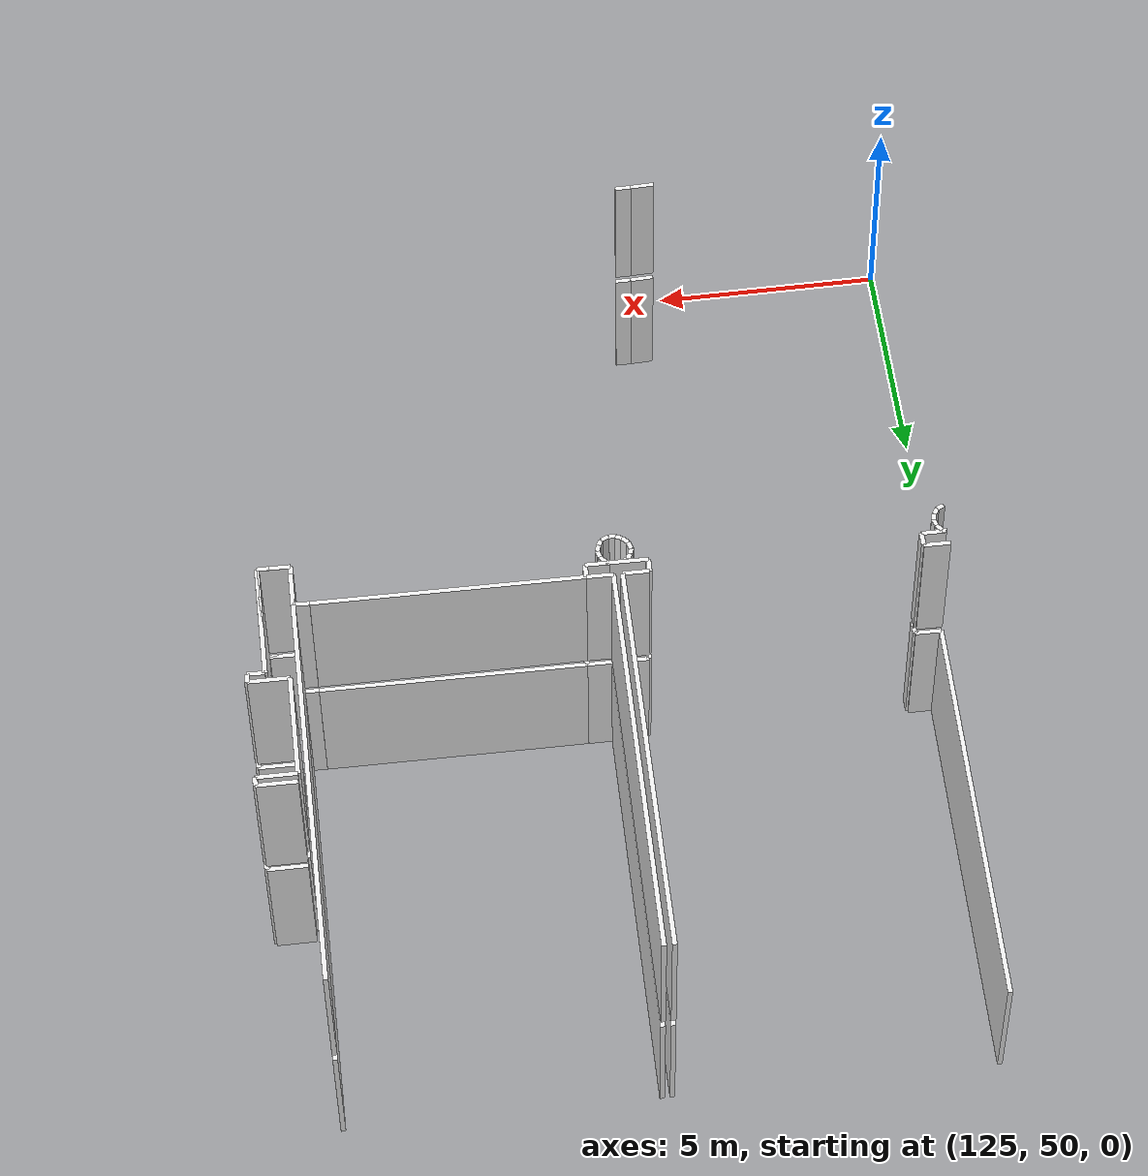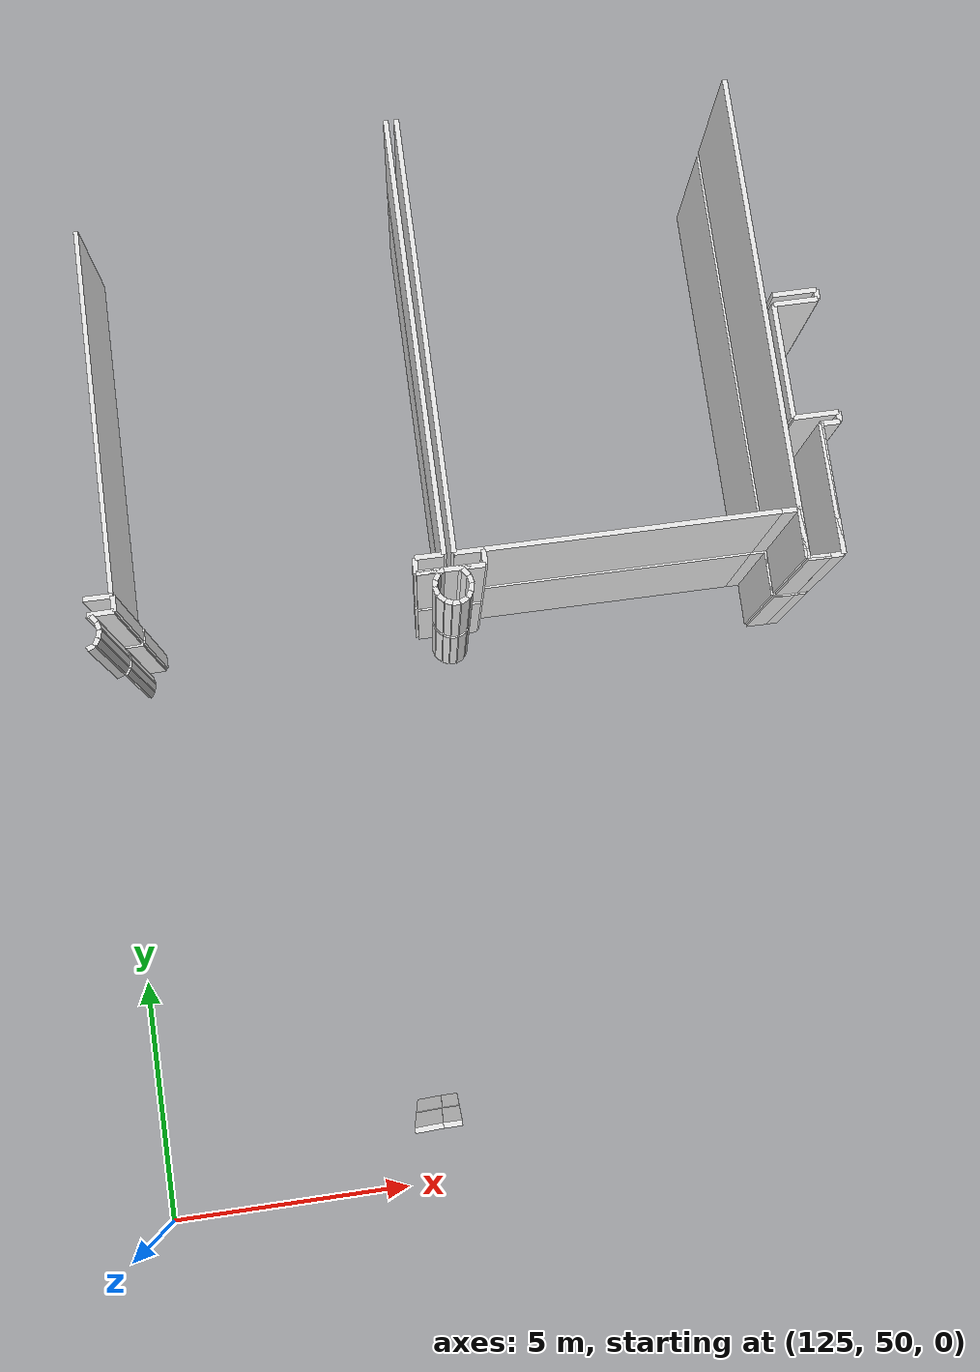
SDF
<sdf version="1.6">
 <world name="default">
  <model name="wall_139.9_66.0_0.0_link">
   <static>true</static>
   <pose>139.88000000000466 65.99500000011176 1.5 0 0 3.129965270893089</pose>
   <link name="link">
    <visual name="visual">
     <geometry><box><size>0.860058137553213 0.1 3</size></box></geometry>
     <material>
      <script><uri>file://media/materials/scripts/gazebo.material</uri><name>Gazebo/White</name></script>
     </material>
    </visual>
   </link>
  </model>
  <model name="wall_139.4_64.9_0.0_link">
   <static>true</static>
   <pose>139.43499999999767 64.85000000009313 1.5 0 0 -1.583839065438706</pose>
   <link name="link">
    <visual name="visual">
     <geometry><box><size>2.3001956436670468 0.1 3</size></box></geometry>
     <material>
      <script><uri>file://media/materials/scripts/gazebo.material</uri><name>Gazebo/White</name></script>
     </material>
    </visual>
   </link>
  </model>
  <model name="wall_139.9_63.7_0.0_link">
   <static>true</static>
   <pose>139.85499999998137 63.69500000006519 1.5 0 0 -0.011493746993381555</pose>
   <link name="link">
    <visual name="visual">
     <geometry><box><size>0.870057469364375 0.1 3</size></box></geometry>
     <material>
      <script><uri>file://media/materials/scripts/gazebo.material</uri><name>Gazebo/White</name></script>
     </material>
    </visual>
   </link>
  </model>
  <model name="wall_139.9_66.2_0.0_link">
   <static>true</static>
   <pose>139.8850000000093 66.18500000005588 1.5 0 0 -0.011764162887155684</pose>
   <link name="link">
    <visual name="visual">
     <geometry><box><size>0.8500588214682255 0.1 3</size></box></geometry>
     <material>
      <script><uri>file://media/materials/scripts/gazebo.material</uri><name>Gazebo/White</name></script>
     </material>
    </visual>
   </link>
  </model>
  <model name="wall_140.3_66.1_0.0_link">
   <static>true</static>
   <pose>140.30999999999767 66.08500000019558 1.5 0 0 -1.5707963267948966</pose>
   <link name="link">
    <visual name="visual">
     <geometry><box><size>0.18999999994412065 0.1 3</size></box></geometry>
     <material>
      <script><uri>file://media/materials/scripts/gazebo.material</uri><name>Gazebo/White</name></script>
     </material>
    </visual>
   </link>
  </model>
  <model name="wall_132.5_66.4_0.0_link">
   <static>true</static>
   <pose>132.4899999999907 66.42999999993481 1.5 0 0 1.557253136818869</pose>
   <link name="link">
    <visual name="visual">
     <geometry><box><size>8.860812603688696 0.1 3</size></box></geometry>
     <material>
      <script><uri>file://media/materials/scripts/gazebo.material</uri><name>Gazebo/White</name></script>
     </material>
    </visual>
   </link>
  </model>
  <model name="wall_125.7_66.5_0.0_link">
   <static>true</static>
   <pose>125.67499999998836 66.53500000014901 1.5 0 0 -1.5854514218446472</pose>
   <link name="link">
    <visual name="visual">
     <geometry><box><size>8.87095259833936 0.1 3</size></box></geometry>
     <material>
      <script><uri>file://media/materials/scripts/gazebo.material</uri><name>Gazebo/White</name></script>
     </material>
    </visual>
   </link>
  </model>
  <model name="wall_125.9_62.1_0.0_link">
   <static>true</static>
   <pose>125.88999999998487 62.09499999997206 1.5 0 0 -0.017855245571888664</pose>
   <link name="link">
    <visual name="visual">
     <geometry><box><size>0.5600892785996132 0.1 3</size></box></geometry>
     <material>
      <script><uri>file://media/materials/scripts/gazebo.material</uri><name>Gazebo/White</name></script>
     </material>
    </visual>
   </link>
  </model>
  <model name="wall_132.1_62.0_0.0_link">
   <static>true</static>
   <pose>132.14999999999418 62.00499999988824 1.5 0 0 -0.017855244740615724</pose>
   <link name="link">
    <visual name="visual">
     <geometry><box><size>0.5600892785912992 0.1 3</size></box></geometry>
     <material>
      <script><uri>file://media/materials/scripts/gazebo.material</uri><name>Gazebo/White</name></script>
     </material>
    </visual>
   </link>
  </model>
  <model name="wall_139.0_61.9_0.0_link">
   <static>true</static>
   <pose>139.04000000000815 61.91500000003725 1.5 0 0 3.112189366044838</pose>
   <link name="link">
    <visual name="visual">
     <geometry><box><size>0.34014702705292804 0.1 3</size></box></geometry>
     <material>
      <script><uri>file://media/materials/scripts/gazebo.material</uri><name>Gazebo/White</name></script>
     </material>
    </visual>
   </link>
  </model>
  <model name="wall_136.0_62.0_0.0_link">
   <static>true</static>
   <pose>136.02499999999418 61.955000000074506 1.5 0 0 3.1292909894057774</pose>
   <link name="link">
    <visual name="visual">
     <geometry><box><size>5.690430563680416 0.1 3</size></box></geometry>
     <material>
      <script><uri>file://media/materials/scripts/gazebo.material</uri><name>Gazebo/White</name></script>
     </material>
    </visual>
   </link>
  </model>
  <model name="wall_132.9_62.0_0.0_link">
   <static>true</static>
   <pose>132.89999999999418 61.99500000011176 1.5 0 0 3.1237374088491774</pose>
   <link name="link">
    <visual name="visual">
     <geometry><box><size>0.5600892785912992 0.1 3</size></box></geometry>
     <material>
      <script><uri>file://media/materials/scripts/gazebo.material</uri><name>Gazebo/White</name></script>
     </material>
    </visual>
   </link>
  </model>
  <model name="wall_132.7_66.4_0.0_link">
   <static>true</static>
   <pose>132.69000000000233 66.42999999993481 1.5 0 0 1.5549962873031096</pose>
   <link name="link">
    <visual name="visual">
     <geometry><box><size>8.861106025643384 0.1 3</size></box></geometry>
     <material>
      <script><uri>file://media/materials/scripts/gazebo.material</uri><name>Gazebo/White</name></script>
     </material>
    </visual>
   </link>
  </model>
  <model name="wall_139.3_66.3_0.0_link">
   <static>true</static>
   <pose>139.26500000001397 66.34000000008382 1.5 0 0 -1.583211038835171</pose>
   <link name="link">
    <visual name="visual">
     <geometry><box><size>8.860682817801711 0.1 3</size></box></geometry>
     <material>
      <script><uri>file://media/materials/scripts/gazebo.material</uri><name>Gazebo/White</name></script>
     </material>
    </visual>
   </link>
  </model>
  <model name="wall_131.1_51.7_0.0_link">
   <static>true</static>
   <pose>131.10000000000582 51.70999999996275 1.5 0 0 3.141592653589793</pose>
   <link name="link">
    <visual name="visual">
     <geometry><box><size>0.34000000002561137 0.1 3</size></box></geometry>
     <material>
      <script><uri>file://media/materials/scripts/gazebo.material</uri><name>Gazebo/White</name></script>
     </material>
    </visual>
   </link>
  </model>
  <model name="wall_130.7_51.7_0.0_link">
   <static>true</static>
   <pose>130.67499999998836 51.699999999953434 1.5 0 0 -3.102397051626987</pose>
   <link name="link">
    <visual name="visual">
     <geometry><box><size>0.5103920062170298 0.1 3</size></box></geometry>
     <material>
      <script><uri>file://media/materials/scripts/gazebo.material</uri><name>Gazebo/White</name></script>
     </material>
    </visual>
   </link>
  </model>
  <model name="wall_125.8_61.3_0.0_link">
   <static>true</static>
   <pose>125.77999999999884 61.265000000130385 1.5 0 0 1.019141343791695</pose>
   <link name="link">
    <visual name="visual">
     <geometry><box><size>0.15264337513809906 0.1 3</size></box></geometry>
     <material>
      <script><uri>file://media/materials/scripts/gazebo.material</uri><name>Gazebo/White</name></script>
     </material>
    </visual>
   </link>
  </model>
  <model name="wall_125.8_61.4_0.0_link">
   <static>true</static>
   <pose>125.83999999999651 61.40500000002794 1.5 0 0 1.310193935023403</pose>
   <link name="link">
    <visual name="visual">
     <geometry><box><size>0.15524174686721334 0.1 3</size></box></geometry>
     <material>
      <script><uri>file://media/materials/scripts/gazebo.material</uri><name>Gazebo/White</name></script>
     </material>
    </visual>
   </link>
  </model>
  <model name="wall_125.8_61.6_0.0_link">
   <static>true</static>
   <pose>125.83999999999651 61.55499999993481 1.5 0 0 1.8313987185663902</pose>
   <link name="link">
    <visual name="visual">
     <geometry><box><size>0.15524174686721334 0.1 3</size></box></geometry>
     <material>
      <script><uri>file://media/materials/scripts/gazebo.material</uri><name>Gazebo/White</name></script>
     </material>
    </visual>
   </link>
  </model>
  <model name="wall_125.8_61.7_0.0_link">
   <static>true</static>
   <pose>125.77499999999418 61.69499999983236 1.5 0 0 2.176340990935377</pose>
   <link name="link">
    <visual name="visual">
     <geometry><box><size>0.15811388293111006 0.1 3</size></box></geometry>
     <material>
      <script><uri>file://media/materials/scripts/gazebo.material</uri><name>Gazebo/White</name></script>
     </material>
    </visual>
   </link>
  </model>
  <model name="wall_125.7_61.8_0.0_link">
   <static>true</static>
   <pose>125.69000000000233 61.77499999990687 1.5 0 0 2.782821980289233</pose>
   <link name="link">
    <visual name="visual">
     <geometry><box><size>0.08544003750549678 0.1 3</size></box></geometry>
     <material>
      <script><uri>file://media/materials/scripts/gazebo.material</uri><name>Gazebo/White</name></script>
     </material>
    </visual>
   </link>
  </model>
  <model name="wall_125.9_61.8_0.0_link">
   <static>true</static>
   <pose>125.91000000000349 61.79000000003725 1.5 0 0 0.0</pose>
   <link name="link">
    <visual name="visual">
     <geometry><box><size>0.5199999999604188 0.1 3</size></box></geometry>
     <material>
      <script><uri>file://media/materials/scripts/gazebo.material</uri><name>Gazebo/White</name></script>
     </material>
    </visual>
   </link>
  </model>
  <model name="wall_126.2_61.9_0.0_link">
   <static>true</static>
   <pose>126.1699999999837 61.93999999994412 1.5 0 0 1.5707963267948966</pose>
   <link name="link">
    <visual name="visual">
     <geometry><box><size>0.2999999998137355 0.1 3</size></box></geometry>
     <material>
      <script><uri>file://media/materials/scripts/gazebo.material</uri><name>Gazebo/White</name></script>
     </material>
    </visual>
   </link>
  </model>
  <model name="wall_131.9_61.9_0.0_link">
   <static>true</static>
   <pose>131.8649999999907 61.859999999869615 1.5 0 0 -1.6041173227248264</pose>
   <link name="link">
    <visual name="visual">
     <geometry><box><size>0.30016662021022184 0.1 3</size></box></geometry>
     <material>
      <script><uri>file://media/materials/scripts/gazebo.material</uri><name>Gazebo/White</name></script>
     </material>
    </visual>
   </link>
  </model>
  <model name="wall_132.1_61.7_0.0_link">
   <static>true</static>
   <pose>132.11999999999534 61.705000000074506 1.5 0 0 -0.01922839866933633</pose>
   <link name="link">
    <visual name="visual">
     <geometry><box><size>0.5200961449721592 0.1 3</size></box></geometry>
     <material>
      <script><uri>file://media/materials/scripts/gazebo.material</uri><name>Gazebo/White</name></script>
     </material>
    </visual>
   </link>
  </model>
  <model name="wall_132.3_61.7_0.0_link">
   <static>true</static>
   <pose>132.3300000000163 61.670000000158325 1.5 0 0 -2.601173152805612</pose>
   <link name="link">
    <visual name="visual">
     <geometry><box><size>0.11661903790569063 0.1 3</size></box></geometry>
     <material>
      <script><uri>file://media/materials/scripts/gazebo.material</uri><name>Gazebo/White</name></script>
     </material>
    </visual>
   </link>
  </model>
  <model name="wall_132.2_61.6_0.0_link">
   <static>true</static>
   <pose>132.2400000000198 61.58499999996275 1.5 0 0 -2.199592611857395</pose>
   <link name="link">
    <visual name="visual">
     <geometry><box><size>0.13601470536809043 0.1 3</size></box></geometry>
     <material>
      <script><uri>file://media/materials/scripts/gazebo.material</uri><name>Gazebo/White</name></script>
     </material>
    </visual>
   </link>
  </model>
  <model name="wall_132.2_61.5_0.0_link">
   <static>true</static>
   <pose>132.18499999999767 61.46499999985099 1.5 0 0 -1.7975951752411936</pose>
   <link name="link">
    <visual name="visual">
     <geometry><box><size>0.13341664053864913 0.1 3</size></box></geometry>
     <material>
      <script><uri>file://media/materials/scripts/gazebo.material</uri><name>Gazebo/White</name></script>
     </material>
    </visual>
   </link>
  </model>
  <model name="wall_132.2_61.3_0.0_link">
   <static>true</static>
   <pose>132.19000000000233 61.32000000006519 1.5 0 0 -1.3258176629832366</pose>
   <link name="link">
    <visual name="visual">
     <geometry><box><size>0.16492422472654628 0.1 3</size></box></geometry>
     <material>
      <script><uri>file://media/materials/scripts/gazebo.material</uri><name>Gazebo/White</name></script>
     </material>
    </visual>
   </link>
  </model>
  <model name="wall_132.3_61.2_0.0_link">
   <static>true</static>
   <pose>132.27000000001863 61.175000000046566 1.5 0 0 -0.8253768518968939</pose>
   <link name="link">
    <visual name="visual">
     <geometry><box><size>0.17691806038643168 0.1 3</size></box></geometry>
     <material>
      <script><uri>file://media/materials/scripts/gazebo.material</uri><name>Gazebo/White</name></script>
     </material>
    </visual>
   </link>
  </model>
  <model name="wall_132.4_61.1_0.0_link">
   <static>true</static>
   <pose>132.39500000001863 61.079999999841675 1.5 0 0 -0.4324077759112656</pose>
   <link name="link">
    <visual name="visual">
     <geometry><box><size>0.14317821066040826 0.1 3</size></box></geometry>
     <material>
      <script><uri>file://media/materials/scripts/gazebo.material</uri><name>Gazebo/White</name></script>
     </material>
    </visual>
   </link>
  </model>
  <model name="wall_132.5_61.0_0.0_link">
   <static>true</static>
   <pose>132.52999999999884 61.044999999925494 1.5 0 0 -0.07130746321929742</pose>
   <link name="link">
    <visual name="visual">
     <geometry><box><size>0.14035668841613164 0.1 3</size></box></geometry>
     <material>
      <script><uri>file://media/materials/scripts/gazebo.material</uri><name>Gazebo/White</name></script>
     </material>
    </visual>
   </link>
  </model>
  <model name="wall_132.7_61.1_0.0_link">
   <static>true</static>
   <pose>132.67999999999302 61.074999999953434 1.5 0 0 0.41241044064316335</pose>
   <link name="link">
    <visual name="visual">
     <geometry><box><size>0.17464249192840064 0.1 3</size></box></geometry>
     <material>
      <script><uri>file://media/materials/scripts/gazebo.material</uri><name>Gazebo/White</name></script>
     </material>
    </visual>
   </link>
  </model>
  <model name="wall_132.8_61.2_0.0_link">
   <static>true</static>
   <pose>132.7950000000128 61.169999999925494 1.5 0 0 1.04272187873045</pose>
   <link name="link">
    <visual name="visual">
     <geometry><box><size>0.13892443999455237 0.1 3</size></box></geometry>
     <material>
      <script><uri>file://media/materials/scripts/gazebo.material</uri><name>Gazebo/White</name></script>
     </material>
    </visual>
   </link>
  </model>
  <model name="wall_132.9_61.3_0.0_link">
   <static>true</static>
   <pose>132.85000000000582 61.30499999993481 1.5 0 0 1.310193935023403</pose>
   <link name="link">
    <visual name="visual">
     <geometry><box><size>0.15524174686721334 0.1 3</size></box></geometry>
     <material>
      <script><uri>file://media/materials/scripts/gazebo.material</uri><name>Gazebo/White</name></script>
     </material>
    </visual>
   </link>
  </model>
  <model name="wall_132.9_61.5_0.0_link">
   <static>true</static>
   <pose>132.85500000001048 61.454999999841675 1.5 0 0 1.7681918865701522</pose>
   <link name="link">
    <visual name="visual">
     <geometry><box><size>0.15297058531052382 0.1 3</size></box></geometry>
     <material>
      <script><uri>file://media/materials/scripts/gazebo.material</uri><name>Gazebo/White</name></script>
     </material>
    </visual>
   </link>
  </model>
  <model name="wall_132.8_61.6_0.0_link">
   <static>true</static>
   <pose>132.79000000000815 61.59499999997206 1.5 0 0 2.2264919518895905</pose>
   <link name="link">
    <visual name="visual">
     <geometry><box><size>0.16401219497037284 0.1 3</size></box></geometry>
     <material>
      <script><uri>file://media/materials/scripts/gazebo.material</uri><name>Gazebo/White</name></script>
     </material>
    </visual>
   </link>
  </model>
  <model name="wall_132.7_61.7_0.0_link">
   <static>true</static>
   <pose>132.69999999998254 61.68000000016764 1.5 0 0 2.6779450442979487</pose>
   <link name="link">
    <visual name="visual">
     <geometry><box><size>0.0894427191312291 0.1 3</size></box></geometry>
     <material>
      <script><uri>file://media/materials/scripts/gazebo.material</uri><name>Gazebo/White</name></script>
     </material>
    </visual>
   </link>
  </model>
  <model name="wall_132.9_61.7_0.0_link">
   <static>true</static>
   <pose>132.91499999997905 61.69500000006519 1.5 0 0 -0.019605331331456193</pose>
   <link name="link">
    <visual name="visual">
     <geometry><box><size>0.5100980298083324 0.1 3</size></box></geometry>
     <material>
      <script><uri>file://media/materials/scripts/gazebo.material</uri><name>Gazebo/White</name></script>
     </material>
    </visual>
   </link>
  </model>
  <model name="wall_133.2_61.8_0.0_link">
   <static>true</static>
   <pose>133.17499999998836 61.84000000008382 1.5 0 0 1.5374753309166493</pose>
   <link name="link">
    <visual name="visual">
     <geometry><box><size>0.30016662067562466 0.1 3</size></box></geometry>
     <material>
      <script><uri>file://media/materials/scripts/gazebo.material</uri><name>Gazebo/White</name></script>
     </material>
    </visual>
   </link>
  </model>
  <model name="wall_139.2_61.5_0.0_link">
   <static>true</static>
   <pose>139.2050000000163 61.5250000001397 1.5 0 0 -1.5837826097268481</pose>
   <link name="link">
    <visual name="visual">
     <geometry><box><size>0.770064932345884 0.1 3</size></box></geometry>
     <material>
      <script><uri>file://media/materials/scripts/gazebo.material</uri><name>Gazebo/White</name></script>
     </material>
    </visual>
   </link>
  </model>
  <model name="wall_139.2_61.0_0.0_link">
   <static>true</static>
   <pose>139.19500000000698 61.045000000158325 1.5 0 0 -1.6233793884701562</pose>
   <link name="link">
    <visual name="visual">
     <geometry><box><size>0.19026297584909185 0.1 3</size></box></geometry>
     <material>
      <script><uri>file://media/materials/scripts/gazebo.material</uri><name>Gazebo/White</name></script>
     </material>
    </visual>
   </link>
  </model>
  <model name="wall_139.4_60.9_0.0_link">
   <static>true</static>
   <pose>139.4100000000035 60.94500000006519 1.5 0 0 -0.022723361391563727</pose>
   <link name="link">
    <visual name="visual">
     <geometry><box><size>0.44011362170113727 0.1 3</size></box></geometry>
     <material>
      <script><uri>file://media/materials/scripts/gazebo.material</uri><name>Gazebo/White</name></script>
     </material>
    </visual>
   </link>
  </model>
  <model name="wall_139.8_60.9_0.0_link">
   <static>true</static>
   <pose>139.75500000000466 60.93999999994412 1.5 0 0 0.0</pose>
   <link name="link">
    <visual name="visual">
     <geometry><box><size>0.25 0.1 3</size></box></geometry>
     <material>
      <script><uri>file://media/materials/scripts/gazebo.material</uri><name>Gazebo/White</name></script>
     </material>
    </visual>
   </link>
  </model>
  <model name="wall_139.9_61.3_0.0_link">
   <static>true</static>
   <pose>139.8850000000093 61.28499999991618 1.5 0 0 1.5563045877147286</pose>
   <link name="link">
    <visual name="visual">
     <geometry><box><size>0.6900724599077062 0.1 3</size></box></geometry>
     <material>
      <script><uri>file://media/materials/scripts/gazebo.material</uri><name>Gazebo/White</name></script>
     </material>
    </visual>
   </link>
  </model>
  <model name="wall_139.9_62.6_0.0_link">
   <static>true</static>
   <pose>139.89999999999418 62.56999999983236 1.5 0 0 1.5601584302397742</pose>
   <link name="link">
    <visual name="visual">
     <geometry><box><size>1.88010637985679 0.1 3</size></box></geometry>
     <material>
      <script><uri>file://media/materials/scripts/gazebo.material</uri><name>Gazebo/White</name></script>
     </material>
    </visual>
   </link>
  </model>
  <model name="wall_140.1_63.5_0.0_link">
   <static>true</static>
   <pose>140.09500000000116 63.50499999988824 1.5 0 0 -0.027020448579695773</pose>
   <link name="link">
    <visual name="visual">
     <geometry><box><size>0.3701351105139276 0.1 3</size></box></geometry>
     <material>
      <script><uri>file://media/materials/scripts/gazebo.material</uri><name>Gazebo/White</name></script>
     </material>
    </visual>
   </link>
  </model>
  <model name="wall_140.3_63.6_0.0_link">
   <static>true</static>
   <pose>140.2850000000035 63.59499999997206 1.5 0 0 1.5182132654251468</pose>
   <link name="link">
    <visual name="visual">
     <geometry><box><size>0.19026297584603252 0.1 3</size></box></geometry>
     <material>
      <script><uri>file://media/materials/scripts/gazebo.material</uri><name>Gazebo/White</name></script>
     </material>
    </visual>
   </link>
  </model>
  <model name="wall_132.5_61.7_0.0_link">
   <static>true</static>
   <pose>132.51499999998487 61.699999999953434 1.5 0 0 -0.015265989561022346</pose>
   <link name="link">
    <visual name="visual">
     <geometry><box><size>1.3101526628582811 0.1 3</size></box></geometry>
     <material>
      <script><uri>file://media/materials/scripts/gazebo.material</uri><name>Gazebo/White</name></script>
     </material>
    </visual>
   </link>
  </model>
  <model name="wall_139.2_61.4_0.0_link">
   <static>true</static>
   <pose>139.20000000001164 61.43000000016764 1.5 0 0 -1.5916266468513158</pose>
   <link name="link">
    <visual name="visual">
     <geometry><box><size>0.9602083106957674 0.1 3</size></box></geometry>
     <material>
      <script><uri>file://media/materials/scripts/gazebo.material</uri><name>Gazebo/White</name></script>
     </material>
    </visual>
   </link>
  </model>
  <model name="wall_139.5_60.9_0.0_link">
   <static>true</static>
   <pose>139.5350000000035 60.94500000006519 1.5 0 0 -0.014491739416310578</pose>
   <link name="link">
    <visual name="visual">
     <geometry><box><size>0.6900724599692818 0.1 3</size></box></geometry>
     <material>
      <script><uri>file://media/materials/scripts/gazebo.material</uri><name>Gazebo/White</name></script>
     </material>
    </visual>
   </link>
  </model>
  <model name="wall_139.9_62.2_0.0_link">
   <static>true</static>
   <pose>139.89499999998952 62.2249999998603 1.5 0 0 1.559123705215765</pose>
   <link name="link">
    <visual name="visual">
     <geometry><box><size>2.570175091143894 0.1 3</size></box></geometry>
     <material>
      <script><uri>file://media/materials/scripts/gazebo.material</uri><name>Gazebo/White</name></script>
     </material>
    </visual>
   </link>
  </model>
  <model name="wall_139.9_66.0_3.2_link">
   <static>true</static>
   <pose>139.88000000000466 65.99500000011176 4.7 0 0 3.129965270893089</pose>
   <link name="link">
    <visual name="visual">
     <geometry><box><size>0.860058137553213 0.1 3</size></box></geometry>
     <material>
      <script><uri>file://media/materials/scripts/gazebo.material</uri><name>Gazebo/White</name></script>
     </material>
    </visual>
   </link>
  </model>
  <model name="wall_139.4_64.9_3.2_link">
   <static>true</static>
   <pose>139.43499999999767 64.85000000009313 4.7 0 0 -1.583839065438706</pose>
   <link name="link">
    <visual name="visual">
     <geometry><box><size>2.3001956436670468 0.1 3</size></box></geometry>
     <material>
      <script><uri>file://media/materials/scripts/gazebo.material</uri><name>Gazebo/White</name></script>
     </material>
    </visual>
   </link>
  </model>
  <model name="wall_139.9_63.7_3.2_link">
   <static>true</static>
   <pose>139.85499999998137 63.69500000006519 4.7 0 0 -0.011493746993381555</pose>
   <link name="link">
    <visual name="visual">
     <geometry><box><size>0.870057469364375 0.1 3</size></box></geometry>
     <material>
      <script><uri>file://media/materials/scripts/gazebo.material</uri><name>Gazebo/White</name></script>
     </material>
    </visual>
   </link>
  </model>
  <model name="wall_139.9_66.2_3.2_link">
   <static>true</static>
   <pose>139.8850000000093 66.18500000005588 4.7 0 0 -0.011764162887155684</pose>
   <link name="link">
    <visual name="visual">
     <geometry><box><size>0.8500588214682255 0.1 3</size></box></geometry>
     <material>
      <script><uri>file://media/materials/scripts/gazebo.material</uri><name>Gazebo/White</name></script>
     </material>
    </visual>
   </link>
  </model>
  <model name="wall_140.3_66.1_3.2_link">
   <static>true</static>
   <pose>140.30999999999767 66.08500000019558 4.7 0 0 -1.5707963267948966</pose>
   <link name="link">
    <visual name="visual">
     <geometry><box><size>0.18999999994412065 0.1 3</size></box></geometry>
     <material>
      <script><uri>file://media/materials/scripts/gazebo.material</uri><name>Gazebo/White</name></script>
     </material>
    </visual>
   </link>
  </model>
  <model name="wall_132.5_66.4_3.2_link">
   <static>true</static>
   <pose>132.4899999999907 66.42999999993481 4.7 0 0 1.557253136818869</pose>
   <link name="link">
    <visual name="visual">
     <geometry><box><size>8.860812603688696 0.1 3</size></box></geometry>
     <material>
      <script><uri>file://media/materials/scripts/gazebo.material</uri><name>Gazebo/White</name></script>
     </material>
    </visual>
   </link>
  </model>
  <model name="wall_125.9_62.1_3.2_link">
   <static>true</static>
   <pose>125.88999999998487 62.09499999997206 4.7 0 0 -0.017855245571888664</pose>
   <link name="link">
    <visual name="visual">
     <geometry><box><size>0.5600892785996132 0.1 3</size></box></geometry>
     <material>
      <script><uri>file://media/materials/scripts/gazebo.material</uri><name>Gazebo/White</name></script>
     </material>
    </visual>
   </link>
  </model>
  <model name="wall_132.1_62.0_3.2_link">
   <static>true</static>
   <pose>132.14999999999418 62.00499999988824 4.7 0 0 -0.017855244740615724</pose>
   <link name="link">
    <visual name="visual">
     <geometry><box><size>0.5600892785912992 0.1 3</size></box></geometry>
     <material>
      <script><uri>file://media/materials/scripts/gazebo.material</uri><name>Gazebo/White</name></script>
     </material>
    </visual>
   </link>
  </model>
  <model name="wall_139.0_61.9_3.2_link">
   <static>true</static>
   <pose>139.04000000000815 61.91500000003725 4.7 0 0 3.112189366044838</pose>
   <link name="link">
    <visual name="visual">
     <geometry><box><size>0.34014702705292804 0.1 3</size></box></geometry>
     <material>
      <script><uri>file://media/materials/scripts/gazebo.material</uri><name>Gazebo/White</name></script>
     </material>
    </visual>
   </link>
  </model>
  <model name="wall_136.0_62.0_3.2_link">
   <static>true</static>
   <pose>136.02499999999418 61.955000000074506 4.7 0 0 3.1292909894057774</pose>
   <link name="link">
    <visual name="visual">
     <geometry><box><size>5.690430563680416 0.1 3</size></box></geometry>
     <material>
      <script><uri>file://media/materials/scripts/gazebo.material</uri><name>Gazebo/White</name></script>
     </material>
    </visual>
   </link>
  </model>
  <model name="wall_132.9_62.0_3.2_link">
   <static>true</static>
   <pose>132.89999999999418 61.99500000011176 4.7 0 0 3.1237374088491774</pose>
   <link name="link">
    <visual name="visual">
     <geometry><box><size>0.5600892785912992 0.1 3</size></box></geometry>
     <material>
      <script><uri>file://media/materials/scripts/gazebo.material</uri><name>Gazebo/White</name></script>
     </material>
    </visual>
   </link>
  </model>
  <model name="wall_132.7_66.4_3.2_link">
   <static>true</static>
   <pose>132.69000000000233 66.42999999993481 4.7 0 0 1.5549962873031096</pose>
   <link name="link">
    <visual name="visual">
     <geometry><box><size>8.861106025643384 0.1 3</size></box></geometry>
     <material>
      <script><uri>file://media/materials/scripts/gazebo.material</uri><name>Gazebo/White</name></script>
     </material>
    </visual>
   </link>
  </model>
  <model name="wall_139.3_66.3_3.2_link">
   <static>true</static>
   <pose>139.26500000001397 66.34000000008382 4.7 0 0 -1.583211038835171</pose>
   <link name="link">
    <visual name="visual">
     <geometry><box><size>8.860682817801711 0.1 3</size></box></geometry>
     <material>
      <script><uri>file://media/materials/scripts/gazebo.material</uri><name>Gazebo/White</name></script>
     </material>
    </visual>
   </link>
  </model>
  <model name="wall_131.1_51.7_3.2_link">
   <static>true</static>
   <pose>131.10000000000582 51.70999999996275 4.7 0 0 3.141592653589793</pose>
   <link name="link">
    <visual name="visual">
     <geometry><box><size>0.34000000002561137 0.1 3</size></box></geometry>
     <material>
      <script><uri>file://media/materials/scripts/gazebo.material</uri><name>Gazebo/White</name></script>
     </material>
    </visual>
   </link>
  </model>
  <model name="wall_130.7_51.7_3.2_link">
   <static>true</static>
   <pose>130.67499999998836 51.699999999953434 4.7 0 0 -3.102397051626987</pose>
   <link name="link">
    <visual name="visual">
     <geometry><box><size>0.5103920062170298 0.1 3</size></box></geometry>
     <material>
      <script><uri>file://media/materials/scripts/gazebo.material</uri><name>Gazebo/White</name></script>
     </material>
    </visual>
   </link>
  </model>
  <model name="wall_125.7_61.2_3.2_link">
   <static>true</static>
   <pose>125.66500000000815 61.170000000158325 4.7 0 0 0.380506377513797</pose>
   <link name="link">
    <visual name="visual">
     <geometry><box><size>0.16155494420236152 0.1 3</size></box></geometry>
     <material>
      <script><uri>file://media/materials/scripts/gazebo.material</uri><name>Gazebo/White</name></script>
     </material>
    </visual>
   </link>
  </model>
  <model name="wall_125.8_61.3_3.2_link">
   <static>true</static>
   <pose>125.77999999999884 61.265000000130385 4.7 0 0 1.019141343791695</pose>
   <link name="link">
    <visual name="visual">
     <geometry><box><size>0.15264337513809906 0.1 3</size></box></geometry>
     <material>
      <script><uri>file://media/materials/scripts/gazebo.material</uri><name>Gazebo/White</name></script>
     </material>
    </visual>
   </link>
  </model>
  <model name="wall_125.8_61.4_3.2_link">
   <static>true</static>
   <pose>125.83999999999651 61.40500000002794 4.7 0 0 1.310193935023403</pose>
   <link name="link">
    <visual name="visual">
     <geometry><box><size>0.15524174686721334 0.1 3</size></box></geometry>
     <material>
      <script><uri>file://media/materials/scripts/gazebo.material</uri><name>Gazebo/White</name></script>
     </material>
    </visual>
   </link>
  </model>
  <model name="wall_125.8_61.6_3.2_link">
   <static>true</static>
   <pose>125.83999999999651 61.55499999993481 4.7 0 0 1.8313987185663902</pose>
   <link name="link">
    <visual name="visual">
     <geometry><box><size>0.15524174686721334 0.1 3</size></box></geometry>
     <material>
      <script><uri>file://media/materials/scripts/gazebo.material</uri><name>Gazebo/White</name></script>
     </material>
    </visual>
   </link>
  </model>
  <model name="wall_125.8_61.7_3.2_link">
   <static>true</static>
   <pose>125.77499999999418 61.69499999983236 4.7 0 0 2.176340990935377</pose>
   <link name="link">
    <visual name="visual">
     <geometry><box><size>0.15811388293111006 0.1 3</size></box></geometry>
     <material>
      <script><uri>file://media/materials/scripts/gazebo.material</uri><name>Gazebo/White</name></script>
     </material>
    </visual>
   </link>
  </model>
  <model name="wall_125.7_61.8_3.2_link">
   <static>true</static>
   <pose>125.69000000000233 61.77499999990687 4.7 0 0 2.782821980289233</pose>
   <link name="link">
    <visual name="visual">
     <geometry><box><size>0.08544003750549678 0.1 3</size></box></geometry>
     <material>
      <script><uri>file://media/materials/scripts/gazebo.material</uri><name>Gazebo/White</name></script>
     </material>
    </visual>
   </link>
  </model>
  <model name="wall_125.9_61.8_3.2_link">
   <static>true</static>
   <pose>125.91000000000349 61.79000000003725 4.7 0 0 0.0</pose>
   <link name="link">
    <visual name="visual">
     <geometry><box><size>0.5199999999604188 0.1 3</size></box></geometry>
     <material>
      <script><uri>file://media/materials/scripts/gazebo.material</uri><name>Gazebo/White</name></script>
     </material>
    </visual>
   </link>
  </model>
  <model name="wall_126.2_61.9_3.2_link">
   <static>true</static>
   <pose>126.1699999999837 61.93999999994412 4.7 0 0 1.5707963267948966</pose>
   <link name="link">
    <visual name="visual">
     <geometry><box><size>0.2999999998137355 0.1 3</size></box></geometry>
     <material>
      <script><uri>file://media/materials/scripts/gazebo.material</uri><name>Gazebo/White</name></script>
     </material>
    </visual>
   </link>
  </model>
  <model name="wall_131.9_61.9_3.2_link">
   <static>true</static>
   <pose>131.8649999999907 61.859999999869615 4.7 0 0 -1.6041173227248264</pose>
   <link name="link">
    <visual name="visual">
     <geometry><box><size>0.30016662021022184 0.1 3</size></box></geometry>
     <material>
      <script><uri>file://media/materials/scripts/gazebo.material</uri><name>Gazebo/White</name></script>
     </material>
    </visual>
   </link>
  </model>
  <model name="wall_132.1_61.7_3.2_link">
   <static>true</static>
   <pose>132.11999999999534 61.705000000074506 4.7 0 0 -0.01922839866933633</pose>
   <link name="link">
    <visual name="visual">
     <geometry><box><size>0.5200961449721592 0.1 3</size></box></geometry>
     <material>
      <script><uri>file://media/materials/scripts/gazebo.material</uri><name>Gazebo/White</name></script>
     </material>
    </visual>
   </link>
  </model>
  <model name="wall_132.3_61.7_3.2_link">
   <static>true</static>
   <pose>132.3300000000163 61.670000000158325 4.7 0 0 -2.601173152805612</pose>
   <link name="link">
    <visual name="visual">
     <geometry><box><size>0.11661903790569063 0.1 3</size></box></geometry>
     <material>
      <script><uri>file://media/materials/scripts/gazebo.material</uri><name>Gazebo/White</name></script>
     </material>
    </visual>
   </link>
  </model>
  <model name="wall_132.2_61.6_3.2_link">
   <static>true</static>
   <pose>132.2400000000198 61.58499999996275 4.7 0 0 -2.199592611857395</pose>
   <link name="link">
    <visual name="visual">
     <geometry><box><size>0.13601470536809043 0.1 3</size></box></geometry>
     <material>
      <script><uri>file://media/materials/scripts/gazebo.material</uri><name>Gazebo/White</name></script>
     </material>
    </visual>
   </link>
  </model>
  <model name="wall_132.2_61.5_3.2_link">
   <static>true</static>
   <pose>132.18499999999767 61.46499999985099 4.7 0 0 -1.7975951752411936</pose>
   <link name="link">
    <visual name="visual">
     <geometry><box><size>0.13341664053864913 0.1 3</size></box></geometry>
     <material>
      <script><uri>file://media/materials/scripts/gazebo.material</uri><name>Gazebo/White</name></script>
     </material>
    </visual>
   </link>
  </model>
  <model name="wall_132.2_61.3_3.2_link">
   <static>true</static>
   <pose>132.19000000000233 61.32000000006519 4.7 0 0 -1.3258176629832366</pose>
   <link name="link">
    <visual name="visual">
     <geometry><box><size>0.16492422472654628 0.1 3</size></box></geometry>
     <material>
      <script><uri>file://media/materials/scripts/gazebo.material</uri><name>Gazebo/White</name></script>
     </material>
    </visual>
   </link>
  </model>
  <model name="wall_132.3_61.2_3.2_link">
   <static>true</static>
   <pose>132.27000000001863 61.175000000046566 4.7 0 0 -0.8253768518968939</pose>
   <link name="link">
    <visual name="visual">
     <geometry><box><size>0.17691806038643168 0.1 3</size></box></geometry>
     <material>
      <script><uri>file://media/materials/scripts/gazebo.material</uri><name>Gazebo/White</name></script>
     </material>
    </visual>
   </link>
  </model>
  <model name="wall_132.4_61.1_3.2_link">
   <static>true</static>
   <pose>132.39500000001863 61.079999999841675 4.7 0 0 -0.4324077759112656</pose>
   <link name="link">
    <visual name="visual">
     <geometry><box><size>0.14317821066040826 0.1 3</size></box></geometry>
     <material>
      <script><uri>file://media/materials/scripts/gazebo.material</uri><name>Gazebo/White</name></script>
     </material>
    </visual>
   </link>
  </model>
  <model name="wall_132.5_61.0_3.2_link">
   <static>true</static>
   <pose>132.52999999999884 61.044999999925494 4.7 0 0 -0.07130746321929742</pose>
   <link name="link">
    <visual name="visual">
     <geometry><box><size>0.14035668841613164 0.1 3</size></box></geometry>
     <material>
      <script><uri>file://media/materials/scripts/gazebo.material</uri><name>Gazebo/White</name></script>
     </material>
    </visual>
   </link>
  </model>
  <model name="wall_132.7_61.1_3.2_link">
   <static>true</static>
   <pose>132.67999999999302 61.074999999953434 4.7 0 0 0.41241044064316335</pose>
   <link name="link">
    <visual name="visual">
     <geometry><box><size>0.17464249192840064 0.1 3</size></box></geometry>
     <material>
      <script><uri>file://media/materials/scripts/gazebo.material</uri><name>Gazebo/White</name></script>
     </material>
    </visual>
   </link>
  </model>
  <model name="wall_132.8_61.2_3.2_link">
   <static>true</static>
   <pose>132.7950000000128 61.169999999925494 4.7 0 0 1.04272187873045</pose>
   <link name="link">
    <visual name="visual">
     <geometry><box><size>0.13892443999455237 0.1 3</size></box></geometry>
     <material>
      <script><uri>file://media/materials/scripts/gazebo.material</uri><name>Gazebo/White</name></script>
     </material>
    </visual>
   </link>
  </model>
  <model name="wall_132.9_61.3_3.2_link">
   <static>true</static>
   <pose>132.85000000000582 61.30499999993481 4.7 0 0 1.310193935023403</pose>
   <link name="link">
    <visual name="visual">
     <geometry><box><size>0.15524174686721334 0.1 3</size></box></geometry>
     <material>
      <script><uri>file://media/materials/scripts/gazebo.material</uri><name>Gazebo/White</name></script>
     </material>
    </visual>
   </link>
  </model>
  <model name="wall_132.9_61.5_3.2_link">
   <static>true</static>
   <pose>132.85500000001048 61.454999999841675 4.7 0 0 1.7681918865701522</pose>
   <link name="link">
    <visual name="visual">
     <geometry><box><size>0.15297058531052382 0.1 3</size></box></geometry>
     <material>
      <script><uri>file://media/materials/scripts/gazebo.material</uri><name>Gazebo/White</name></script>
     </material>
    </visual>
   </link>
  </model>
  <model name="wall_132.8_61.6_3.2_link">
   <static>true</static>
   <pose>132.79000000000815 61.59499999997206 4.7 0 0 2.2264919518895905</pose>
   <link name="link">
    <visual name="visual">
     <geometry><box><size>0.16401219497037284 0.1 3</size></box></geometry>
     <material>
      <script><uri>file://media/materials/scripts/gazebo.material</uri><name>Gazebo/White</name></script>
     </material>
    </visual>
   </link>
  </model>
  <model name="wall_132.7_61.7_3.2_link">
   <static>true</static>
   <pose>132.69999999998254 61.68000000016764 4.7 0 0 2.6779450442979487</pose>
   <link name="link">
    <visual name="visual">
     <geometry><box><size>0.0894427191312291 0.1 3</size></box></geometry>
     <material>
      <script><uri>file://media/materials/scripts/gazebo.material</uri><name>Gazebo/White</name></script>
     </material>
    </visual>
   </link>
  </model>
  <model name="wall_132.9_61.7_3.2_link">
   <static>true</static>
   <pose>132.91499999997905 61.69500000006519 4.7 0 0 -0.019605331331456193</pose>
   <link name="link">
    <visual name="visual">
     <geometry><box><size>0.5100980298083324 0.1 3</size></box></geometry>
     <material>
      <script><uri>file://media/materials/scripts/gazebo.material</uri><name>Gazebo/White</name></script>
     </material>
    </visual>
   </link>
  </model>
  <model name="wall_133.2_61.8_3.2_link">
   <static>true</static>
   <pose>133.17499999998836 61.84000000008382 4.7 0 0 1.5374753309166493</pose>
   <link name="link">
    <visual name="visual">
     <geometry><box><size>0.30016662067562466 0.1 3</size></box></geometry>
     <material>
      <script><uri>file://media/materials/scripts/gazebo.material</uri><name>Gazebo/White</name></script>
     </material>
    </visual>
   </link>
  </model>
  <model name="wall_139.2_61.5_3.2_link">
   <static>true</static>
   <pose>139.2050000000163 61.5250000001397 4.7 0 0 -1.5837826097268481</pose>
   <link name="link">
    <visual name="visual">
     <geometry><box><size>0.770064932345884 0.1 3</size></box></geometry>
     <material>
      <script><uri>file://media/materials/scripts/gazebo.material</uri><name>Gazebo/White</name></script>
     </material>
    </visual>
   </link>
  </model>
  <model name="wall_139.2_61.0_3.2_link">
   <static>true</static>
   <pose>139.19500000000698 61.045000000158325 4.7 0 0 -1.6233793884701562</pose>
   <link name="link">
    <visual name="visual">
     <geometry><box><size>0.19026297584909185 0.1 3</size></box></geometry>
     <material>
      <script><uri>file://media/materials/scripts/gazebo.material</uri><name>Gazebo/White</name></script>
     </material>
    </visual>
   </link>
  </model>
  <model name="wall_139.4_60.9_3.2_link">
   <static>true</static>
   <pose>139.4100000000035 60.94500000006519 4.7 0 0 -0.022723361391563727</pose>
   <link name="link">
    <visual name="visual">
     <geometry><box><size>0.44011362170113727 0.1 3</size></box></geometry>
     <material>
      <script><uri>file://media/materials/scripts/gazebo.material</uri><name>Gazebo/White</name></script>
     </material>
    </visual>
   </link>
  </model>
  <model name="wall_139.8_60.9_3.2_link">
   <static>true</static>
   <pose>139.75500000000466 60.93999999994412 4.7 0 0 0.0</pose>
   <link name="link">
    <visual name="visual">
     <geometry><box><size>0.25 0.1 3</size></box></geometry>
     <material>
      <script><uri>file://media/materials/scripts/gazebo.material</uri><name>Gazebo/White</name></script>
     </material>
    </visual>
   </link>
  </model>
  <model name="wall_139.9_61.3_3.2_link">
   <static>true</static>
   <pose>139.8850000000093 61.28499999991618 4.7 0 0 1.5563045877147286</pose>
   <link name="link">
    <visual name="visual">
     <geometry><box><size>0.6900724599077062 0.1 3</size></box></geometry>
     <material>
      <script><uri>file://media/materials/scripts/gazebo.material</uri><name>Gazebo/White</name></script>
     </material>
    </visual>
   </link>
  </model>
  <model name="wall_139.9_62.6_3.2_link">
   <static>true</static>
   <pose>139.89999999999418 62.56999999983236 4.7 0 0 1.5601584302397742</pose>
   <link name="link">
    <visual name="visual">
     <geometry><box><size>1.88010637985679 0.1 3</size></box></geometry>
     <material>
      <script><uri>file://media/materials/scripts/gazebo.material</uri><name>Gazebo/White</name></script>
     </material>
    </visual>
   </link>
  </model>
  <model name="wall_140.1_63.5_3.2_link">
   <static>true</static>
   <pose>140.09500000000116 63.50499999988824 4.7 0 0 -0.027020448579695773</pose>
   <link name="link">
    <visual name="visual">
     <geometry><box><size>0.3701351105139276 0.1 3</size></box></geometry>
     <material>
      <script><uri>file://media/materials/scripts/gazebo.material</uri><name>Gazebo/White</name></script>
     </material>
    </visual>
   </link>
  </model>
  <model name="wall_140.3_63.6_3.2_link">
   <static>true</static>
   <pose>140.2850000000035 63.59499999997206 4.7 0 0 1.5182132654251468</pose>
   <link name="link">
    <visual name="visual">
     <geometry><box><size>0.19026297584603252 0.1 3</size></box></geometry>
     <material>
      <script><uri>file://media/materials/scripts/gazebo.material</uri><name>Gazebo/White</name></script>
     </material>
    </visual>
   </link>
  </model>
  <model name="wall_132.5_61.7_3.2_link">
   <static>true</static>
   <pose>132.51499999998487 61.699999999953434 4.7 0 0 -0.015265989561022346</pose>
   <link name="link">
    <visual name="visual">
     <geometry><box><size>1.3101526628582811 0.1 3</size></box></geometry>
     <material>
      <script><uri>file://media/materials/scripts/gazebo.material</uri><name>Gazebo/White</name></script>
     </material>
    </visual>
   </link>
  </model>
  <model name="wall_139.2_61.4_3.2_link">
   <static>true</static>
   <pose>139.20000000001164 61.43000000016764 4.7 0 0 -1.5916266468513158</pose>
   <link name="link">
    <visual name="visual">
     <geometry><box><size>0.9602083106957674 0.1 3</size></box></geometry>
     <material>
      <script><uri>file://media/materials/scripts/gazebo.material</uri><name>Gazebo/White</name></script>
     </material>
    </visual>
   </link>
  </model>
  <model name="wall_139.5_60.9_3.2_link">
   <static>true</static>
   <pose>139.5350000000035 60.94500000006519 4.7 0 0 -0.014491739416310578</pose>
   <link name="link">
    <visual name="visual">
     <geometry><box><size>0.6900724599692818 0.1 3</size></box></geometry>
     <material>
      <script><uri>file://media/materials/scripts/gazebo.material</uri><name>Gazebo/White</name></script>
     </material>
    </visual>
   </link>
  </model>
  <model name="wall_139.9_62.2_3.2_link">
   <static>true</static>
   <pose>139.89499999998952 62.2249999998603 4.7 0 0 1.559123705215765</pose>
   <link name="link">
    <visual name="visual">
     <geometry><box><size>2.570175091143894 0.1 3</size></box></geometry>
     <material>
      <script><uri>file://media/materials/scripts/gazebo.material</uri><name>Gazebo/White</name></script>
     </material>
    </visual>
   </link>
  </model>
 </world>
</sdf>
